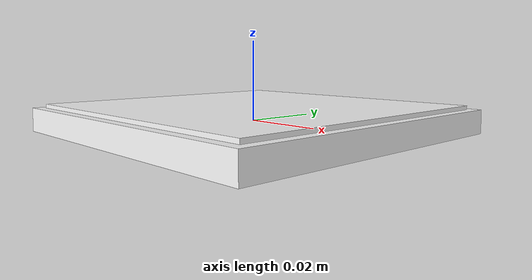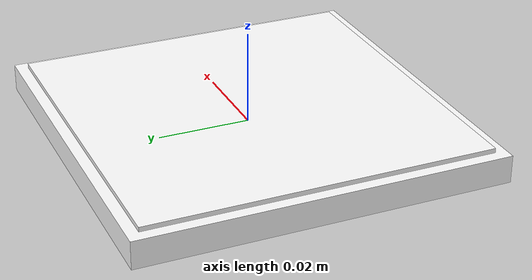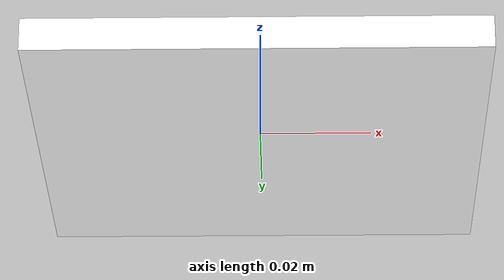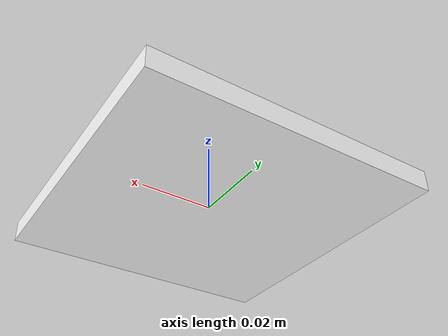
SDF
<?xml version="1.0"?>
<sdf version="1.10">
  <model name="digit_panel">
    <link name="link">
      <inertial>
        <mass>0.02</mass>
        <inertia><ixx>1.1e-5</ixx><iyy>1.1e-5</iyy><izz>2.1e-5</izz>
          <ixy>0</ixy><ixz>0</ixz><iyz>0</iyz></inertia>
      </inertial>
      <collision name="collision">
        <geometry><box><size>0.08 0.08 0.006</size></box></geometry>
      </collision>
      <!-- Corps blanc -->
      <visual name="body">
        <geometry><box><size>0.08 0.08 0.006</size></box></geometry>
        <material><ambient>0.95 0.95 0.95 1</ambient><diffuse>1 1 1 1</diffuse></material>
      </visual>
      <!-- Tuile chiffre sur le dessus (z = 0.003 + 0.0005) -->
      <visual name="digit">
        <pose>0 0 0.0035 0 0 0</pose>
        <geometry><box><size>0.075 0.075 0.001</size></box></geometry>
        <material>
          <ambient>1 1 1 1</ambient><diffuse>1 1 1 1</diffuse>
          <pbr><metal>
            <albedo_map>digit_panel/materials/textures/digit_0.png</albedo_map>
            <metalness>0.0</metalness><roughness>1.0</roughness>
          </metal></pbr>
        </material>
      </visual>
    </link>
  </model>
</sdf>
